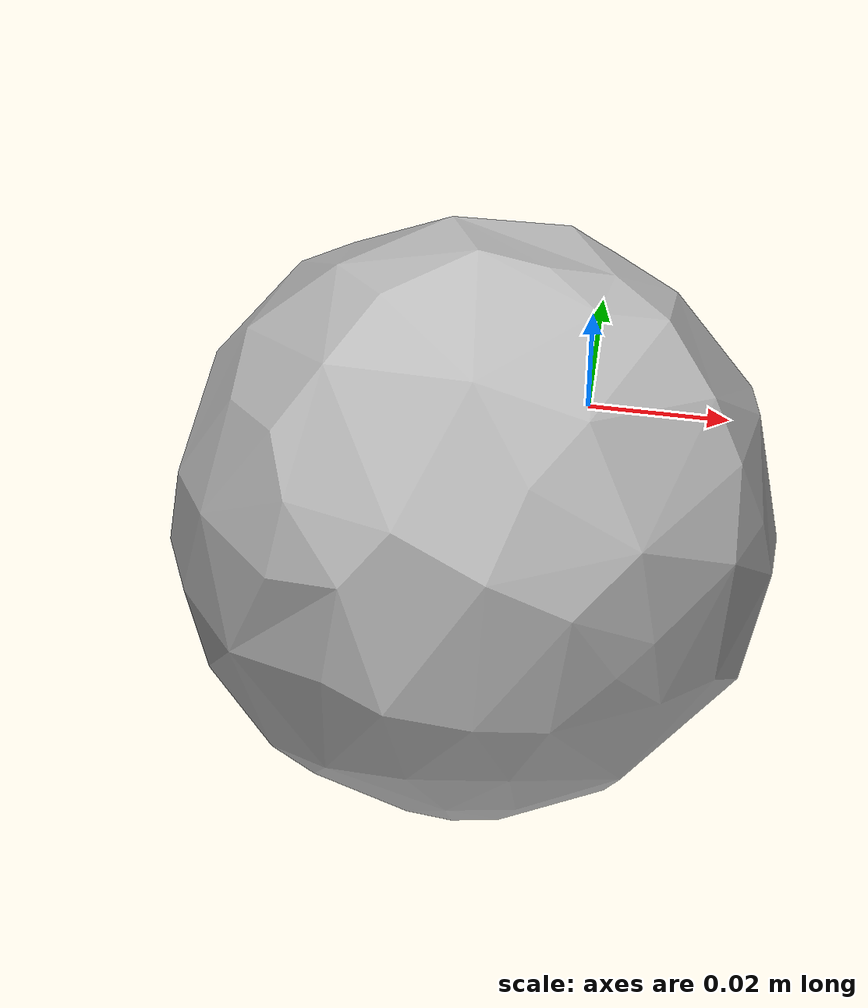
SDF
<?xml version='1.0'?>
<sdf version="1.4">
  <model name="055_baseball">
    <static>false</static>
    <link name="link">
      <inertial>
        <pose>-0.009949458586101065 -0.04811638738990714 0.03593047145186587 3.0787425602820693 -0.636186773971723 -1.4687425967279886</pose>
        <mass>0.020377144480429668</mass>
        <inertia>
          <ixx>1.0920518570087498e-05</ixx>
          <ixy>-5.538000545263361e-22</ixy>
          <ixz>-3.4716694511076195e-23</ixz>
          <iyy>1.0861970772771975e-05</iyy>
          <iyz>-5.744478600431151e-24</iyz>
          <izz>1.0816775452808982e-05</izz>
        </inertia>
      </inertial>
      <collision name="collision">
        <geometry>
          <mesh>
            <!-- Use a downsampled mesh for collisions -->
            <uri>model:///055_baseball/055_baseball_250_collision.stl</uri>
	        </mesh>
        </geometry>
        <surface>
      </surface>
      </collision>
      <visual name="visual">
        <geometry>
          <mesh>
            <uri>model:///055_baseball/textured.obj</uri>
	        </mesh>
        </geometry>
        <material>
          <script>
            <uri>model:///055_baseball/055_baseball.material</uri>
            <name>055_baseball</name>
          </script>
        </material>
      </visual>
    </link>
  </model>
</sdf>
